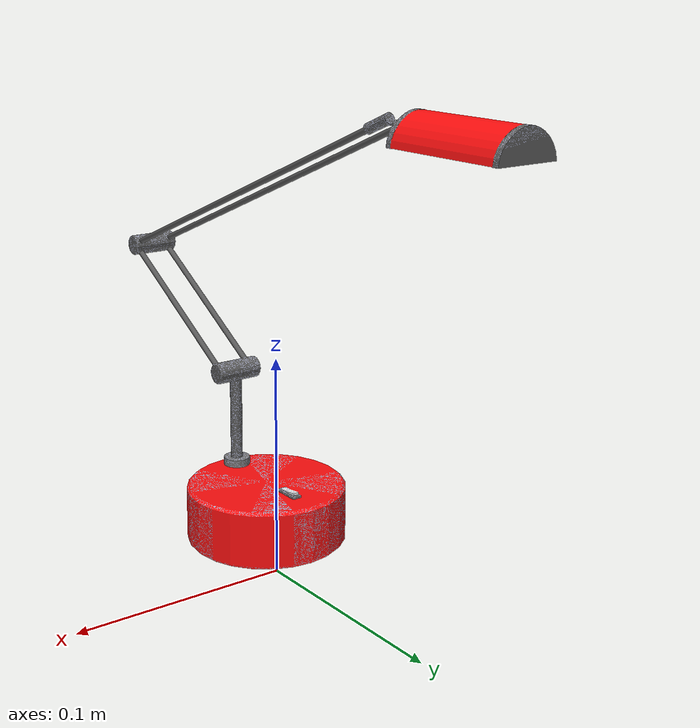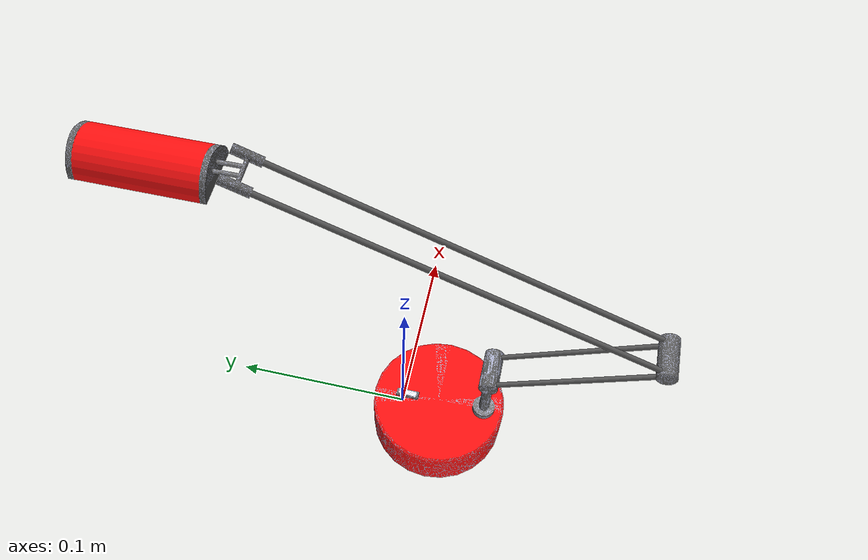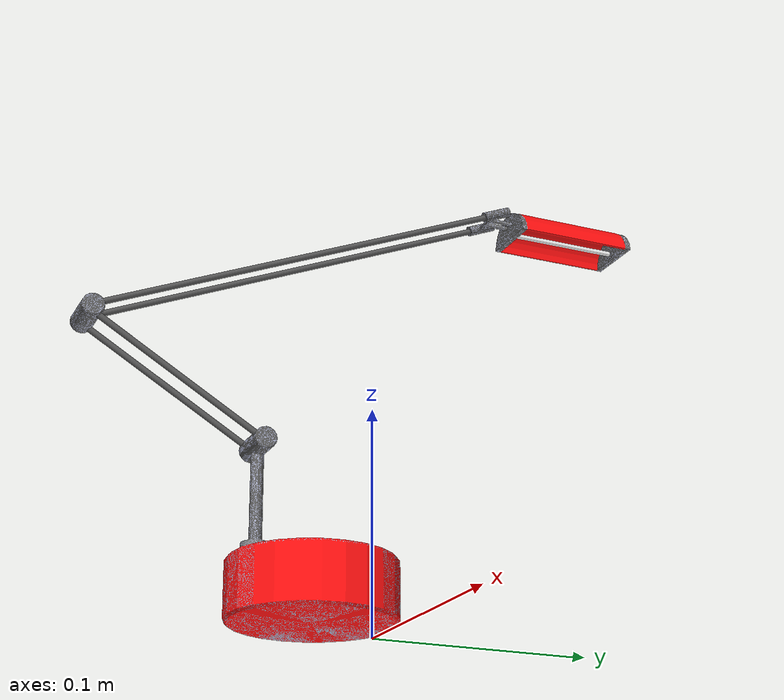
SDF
<?xml version="1.0" ?>
<sdf version="1.4">
  <model name="custom_lamp">

    <static>false</static>

    <link name="link">

      <inertial>
        <pose>0 0 0 0 0 0</pose>
        <mass>0.2</mass>
        <inertia>
          <ixx>10</ixx><ixy>0</ixy><ixz>0</ixz>
          <iyy>10</iyy><iyz>0</iyz>
          <izz>1</izz>
        </inertia>
      </inertial>

      <visual name="visual">
        <pose>0 0 0 0 0 -1.5708</pose>
        <cast_shadows>false</cast_shadows>
        <geometry>
          <mesh>
            <uri>model://custom_lamp/meshes/model.dae</uri>
            <scale>0.07 0.07 0.07</scale>
          </mesh>
        </geometry>
      </visual>

      <collision name="collision_base">
        <pose>0 0 0.018226 0 0 0</pose>
        <geometry>
          <box>
            <size>0.25 0.25 0.03</size>
          </box>
        </geometry>
      </collision>

      <collision name="collision_joint_01">
        <pose>-0.010369 -0.048786 0.058344 0 0 0</pose>
        <geometry>
          <box>
            <size>0.021862 0.01477 0.050717</size>
          </box>
        </geometry>
      </collision>

      <collision name="collision_joint_02">
        <pose>-0.010369 -0.086671 0.105499 1.024687 0 0</pose>
        <geometry>
          <box>
            <size>0.021862 0.01477 0.101128</size>
          </box>
        </geometry>
      </collision>

      <collision name="collision_joint_03">
        <pose>-0.010369 -0.058442 0.156533 1.951694 0 0</pose>
        <geometry>
          <box>
            <size>0.021862 0.01477 0.138692</size>
          </box>
        </geometry>
      </collision>

    </link>
  </model>
</sdf>
